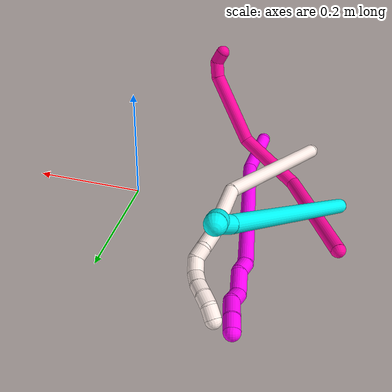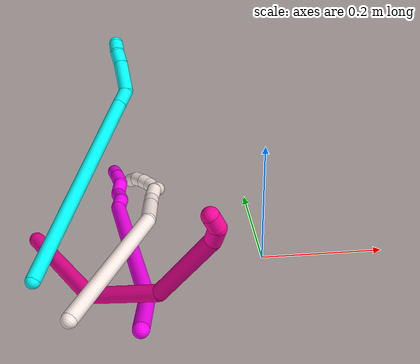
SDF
<sdf version="1.7">
 <world name="default">
  <model name="3">
   <static>0</static>
   <link name="3">
    <collision name="collision-cylinder-e_1_1_4">
     <pose>0.02684 0.108191 0.145891 -0.638098 0.146713 -0.048542</pose>
     <geometry><cylinder><radius>0.0125</radius><length>0.367204</length></cylinder></geometry>
     <surface>
      <friction><ode><mu>1.16</mu><mu2>1.16</mu2><slip1>0</slip1><slip2>0</slip2></ode></friction>
      <contact><ode><kp>1e+06</kp><kd>1</kd><max_vel>0</max_vel><min_depth>0.001</min_depth></ode></contact>
     </surface>
    </collision>
    <visual name="visual-cylinder-e_1_1_4">
     <pose>0.02684 0.108191 0.145891 -0.638098 0.146713 -0.048542</pose>
     <geometry><cylinder><radius>0.0125</radius><length>0.367204</length></cylinder></geometry>
     <material><ambient>0.003922 1 0.996078 1</ambient></material>
    </visual>
    <collision name="collision-cylinder-e_2_4_5">
     <pose>0.056899 0.22608 0.302616 -0.730053 0.217832 -0.083527</pose>
     <geometry><cylinder><radius>0.0125</radius><length>0.029787</length></cylinder></geometry>
     <surface>
      <friction><ode><mu>1.16</mu><mu2>1.16</mu2><slip1>0</slip1><slip2>0</slip2></ode></friction>
      <contact><ode><kp>1e+06</kp><kd>1</kd><max_vel>0</max_vel><min_depth>0.001</min_depth></ode></contact>
     </surface>
    </collision>
    <visual name="visual-cylinder-e_2_4_5">
     <pose>0.056899 0.22608 0.302616 -0.730053 0.217832 -0.083527</pose>
     <geometry><cylinder><radius>0.0125</radius><length>0.029787</length></cylinder></geometry>
     <material><ambient>0.003922 1 0.996078 1</ambient></material>
    </visual>
    <collision name="collision-cylinder-e_3_5_6">
     <pose>0.075059 0.24046 0.33735 -0.19348 0.550301 -0.054779</pose>
     <geometry><cylinder><radius>0.0125</radius><length>0.057141</length></cylinder></geometry>
     <surface>
      <friction><ode><mu>1.16</mu><mu2>1.16</mu2><slip1>0</slip1><slip2>0</slip2></ode></friction>
      <contact><ode><kp>1e+06</kp><kd>1</kd><max_vel>0</max_vel><min_depth>0.001</min_depth></ode></contact>
     </surface>
    </collision>
    <visual name="visual-cylinder-e_3_5_6">
     <pose>0.075059 0.24046 0.33735 -0.19348 0.550301 -0.054779</pose>
     <geometry><cylinder><radius>0.0125</radius><length>0.057141</length></cylinder></geometry>
     <material><ambient>0.003922 1 0.996078 1</ambient></material>
    </visual>
    <collision name="collision-cylinder-e_4_6_7">
     <pose>0.096971 0.246052 0.371356 -0.089711 0.601884 -0.02786</pose>
     <geometry><cylinder><radius>0.0125</radius><length>0.024625</length></cylinder></geometry>
     <surface>
      <friction><ode><mu>1.16</mu><mu2>1.16</mu2><slip1>0</slip1><slip2>0</slip2></ode></friction>
      <contact><ode><kp>1e+06</kp><kd>1</kd><max_vel>0</max_vel><min_depth>0.001</min_depth></ode></contact>
     </surface>
    </collision>
    <visual name="visual-cylinder-e_4_6_7">
     <pose>0.096971 0.246052 0.371356 -0.089711 0.601884 -0.02786</pose>
     <geometry><cylinder><radius>0.0125</radius><length>0.024625</length></cylinder></geometry>
     <material><ambient>0.003922 1 0.996078 1</ambient></material>
    </visual>
    <collision name="collision-cylinder-e_5_7_2">
     <pose>0.107027 0.248815 0.391457 -0.183431 0.294706 -0.027301</pose>
     <geometry><cylinder><radius>0.0125</radius><length>0.021243</length></cylinder></geometry>
     <surface>
      <friction><ode><mu>1.16</mu><mu2>1.16</mu2><slip1>0</slip1><slip2>0</slip2></ode></friction>
      <contact><ode><kp>1e+06</kp><kd>1</kd><max_vel>0</max_vel><min_depth>0.001</min_depth></ode></contact>
     </surface>
    </collision>
    <visual name="visual-cylinder-e_5_7_2">
     <pose>0.107027 0.248815 0.391457 -0.183431 0.294706 -0.027301</pose>
     <geometry><cylinder><radius>0.0125</radius><length>0.021243</length></cylinder></geometry>
     <material><ambient>0.003922 1 0.996078 1</ambient></material>
    </visual>
    <collision name="collision-sphere-2">
     <pose>0.110112 0.250669 0.40145 0 -0 0</pose>
     <geometry><sphere><radius>0.0125</radius></sphere></geometry>
     <surface>
      <friction><ode><mu>1.16</mu><mu2>1.16</mu2><slip1>0</slip1><slip2>0</slip2></ode></friction>
      <contact><ode><kp>1e+06</kp><kd>1</kd><max_vel>0</max_vel><min_depth>0.001</min_depth></ode></contact>
     </surface>
    </collision>
    <visual name="visual-sphere-2">
     <pose>0.110112 0.250669 0.40145 0 -0 0</pose>
     <geometry><sphere><radius>0.0125</radius></sphere></geometry>
     <material><ambient>0.003922 1 0.996078 1</ambient></material>
    </visual>
    <collision name="collision-sphere-7">
     <pose>0.103942 0.246961 0.381464 0 -0 0</pose>
     <geometry><sphere><radius>0.0125</radius></sphere></geometry>
     <surface>
      <friction><ode><mu>1.16</mu><mu2>1.16</mu2><slip1>0</slip1><slip2>0</slip2></ode></friction>
      <contact><ode><kp>1e+06</kp><kd>1</kd><max_vel>0</max_vel><min_depth>0.001</min_depth></ode></contact>
     </surface>
    </collision>
    <visual name="visual-sphere-7">
     <pose>0.103942 0.246961 0.381464 0 -0 0</pose>
     <geometry><sphere><radius>0.0125</radius></sphere></geometry>
     <material><ambient>0.003922 1 0.996078 1</ambient></material>
    </visual>
    <collision name="collision-sphere-6">
     <pose>0.089999 0.245143 0.361248 0 -0 0</pose>
     <geometry><sphere><radius>0.0125</radius></sphere></geometry>
     <surface>
      <friction><ode><mu>1.16</mu><mu2>1.16</mu2><slip1>0</slip1><slip2>0</slip2></ode></friction>
      <contact><ode><kp>1e+06</kp><kd>1</kd><max_vel>0</max_vel><min_depth>0.001</min_depth></ode></contact>
     </surface>
    </collision>
    <visual name="visual-sphere-6">
     <pose>0.089999 0.245143 0.361248 0 -0 0</pose>
     <geometry><sphere><radius>0.0125</radius></sphere></geometry>
     <material><ambient>0.003922 1 0.996078 1</ambient></material>
    </visual>
    <collision name="collision-sphere-5">
     <pose>0.060118 0.235778 0.313452 0 -0 0</pose>
     <geometry><sphere><radius>0.0125</radius></sphere></geometry>
     <surface>
      <friction><ode><mu>1.16</mu><mu2>1.16</mu2><slip1>0</slip1><slip2>0</slip2></ode></friction>
      <contact><ode><kp>1e+06</kp><kd>1</kd><max_vel>0</max_vel><min_depth>0.001</min_depth></ode></contact>
     </surface>
    </collision>
    <visual name="visual-sphere-5">
     <pose>0.060118 0.235778 0.313452 0 -0 0</pose>
     <geometry><sphere><radius>0.0125</radius></sphere></geometry>
     <material><ambient>0.003922 1 0.996078 1</ambient></material>
    </visual>
    <collision name="collision-sphere-1">
     <geometry><sphere><radius>0.0125</radius></sphere></geometry>
     <surface>
      <friction><ode><mu>1.16</mu><mu2>1.16</mu2><slip1>0</slip1><slip2>0</slip2></ode></friction>
      <contact><ode><kp>1e+06</kp><kd>1</kd><max_vel>0</max_vel><min_depth>0.001</min_depth></ode></contact>
     </surface>
    </collision>
    <visual name="visual-sphere-1">
     <geometry><sphere><radius>0.0125</radius></sphere></geometry>
     <material><ambient>0.003922 1 0.996078 1</ambient></material>
    </visual>
    <collision name="collision-sphere-4">
     <pose>0.053681 0.216382 0.291781 0 -0 0</pose>
     <geometry><sphere><radius>0.0125</radius></sphere></geometry>
     <surface>
      <friction><ode><mu>1.16</mu><mu2>1.16</mu2><slip1>0</slip1><slip2>0</slip2></ode></friction>
      <contact><ode><kp>1e+06</kp><kd>1</kd><max_vel>0</max_vel><min_depth>0.001</min_depth></ode></contact>
     </surface>
    </collision>
    <visual name="visual-sphere-4">
     <pose>0.053681 0.216382 0.291781 0 -0 0</pose>
     <geometry><sphere><radius>0.0125</radius></sphere></geometry>
     <material><ambient>0.003922 1 0.996078 1</ambient></material>
    </visual>
    <inertial>
     <pose>0.041002 0.143094 0.198645 0 -0 0</pose>
     <mass>0.5</mass>
     <inertia>
      <ixx>0.003922</ixx>
      <ixy>0</ixy>
      <ixz>0</ixz>
      <iyy>0.003183</iyy>
      <iyz>0</iyz>
      <izz>-0.003031</izz>
     </inertia>
    </inertial>
   </link>
   <pose>-0.363133 -0.044152 0.012192 1.09544 -1.21172 -2.5264</pose>
  </model>
  <model name="10">
   <static>0</static>
   <link name="10">
    <collision name="collision-cylinder-e_1_1_4">
     <pose>0.007856 0.044188 0.008393 -1.38309 0.172914 -0.143274</pose>
     <geometry><cylinder><radius>0.0125</radius><length>0.091318</length></cylinder></geometry>
     <surface>
      <friction><ode><mu>1.16</mu><mu2>1.16</mu2><slip1>0</slip1><slip2>0</slip2></ode></friction>
      <contact><ode><kp>1e+06</kp><kd>1</kd><max_vel>0</max_vel><min_depth>0.001</min_depth></ode></contact>
     </surface>
    </collision>
    <visual name="visual-cylinder-e_1_1_4">
     <pose>0.007856 0.044188 0.008393 -1.38309 0.172914 -0.143274</pose>
     <geometry><cylinder><radius>0.0125</radius><length>0.091318</length></cylinder></geometry>
     <material><ambient>1 0 0.964706 1</ambient></material>
    </visual>
    <collision name="collision-cylinder-e_2_4_5">
     <pose>0.019157 0.221204 0.001041 -1.68878 0.025754 -0.028987</pose>
     <geometry><cylinder><radius>0.0125</radius><length>0.267605</length></cylinder></geometry>
     <surface>
      <friction><ode><mu>1.16</mu><mu2>1.16</mu2><slip1>0</slip1><slip2>0</slip2></ode></friction>
      <contact><ode><kp>1e+06</kp><kd>1</kd><max_vel>0</max_vel><min_depth>0.001</min_depth></ode></contact>
     </surface>
    </collision>
    <visual name="visual-cylinder-e_2_4_5">
     <pose>0.019157 0.221204 0.001041 -1.68878 0.025754 -0.028987</pose>
     <geometry><cylinder><radius>0.0125</radius><length>0.267605</length></cylinder></geometry>
     <material><ambient>1 0 0.964706 1</ambient></material>
    </visual>
    <collision name="collision-cylinder-e_3_5_6">
     <pose>0.021186 0.365257 -0.011833 -1.32039 -0.121671 0.094514</pose>
     <geometry><cylinder><radius>0.0125</radius><length>0.023345</length></cylinder></geometry>
     <surface>
      <friction><ode><mu>1.16</mu><mu2>1.16</mu2><slip1>0</slip1><slip2>0</slip2></ode></friction>
      <contact><ode><kp>1e+06</kp><kd>1</kd><max_vel>0</max_vel><min_depth>0.001</min_depth></ode></contact>
     </surface>
    </collision>
    <visual name="visual-cylinder-e_3_5_6">
     <pose>0.021186 0.365257 -0.011833 -1.32039 -0.121671 0.094514</pose>
     <geometry><cylinder><radius>0.0125</radius><length>0.023345</length></cylinder></geometry>
     <material><ambient>1 0 0.964706 1</ambient></material>
    </visual>
    <collision name="collision-cylinder-e_4_6_7">
     <pose>0.024595 0.395117 -0.010568 -1.65678 0.252516 -0.274944</pose>
     <geometry><cylinder><radius>0.0125</radius><length>0.038632</length></cylinder></geometry>
     <surface>
      <friction><ode><mu>1.16</mu><mu2>1.16</mu2><slip1>0</slip1><slip2>0</slip2></ode></friction>
      <contact><ode><kp>1e+06</kp><kd>1</kd><max_vel>0</max_vel><min_depth>0.001</min_depth></ode></contact>
     </surface>
    </collision>
    <visual name="visual-cylinder-e_4_6_7">
     <pose>0.024595 0.395117 -0.010568 -1.65678 0.252516 -0.274944</pose>
     <geometry><cylinder><radius>0.0125</radius><length>0.038632</length></cylinder></geometry>
     <material><ambient>1 0 0.964706 1</ambient></material>
    </visual>
    <collision name="collision-cylinder-e_5_7_8">
     <pose>0.024644 0.425584 -0.009956 -1.38551 -0.377726 0.314664</pose>
     <geometry><cylinder><radius>0.0125</radius><length>0.025904</length></cylinder></geometry>
     <surface>
      <friction><ode><mu>1.16</mu><mu2>1.16</mu2><slip1>0</slip1><slip2>0</slip2></ode></friction>
      <contact><ode><kp>1e+06</kp><kd>1</kd><max_vel>0</max_vel><min_depth>0.001</min_depth></ode></contact>
     </surface>
    </collision>
    <visual name="visual-cylinder-e_5_7_8">
     <pose>0.024644 0.425584 -0.009956 -1.38551 -0.377726 0.314664</pose>
     <geometry><cylinder><radius>0.0125</radius><length>0.025904</length></cylinder></geometry>
     <material><ambient>1 0 0.964706 1</ambient></material>
    </visual>
    <collision name="collision-cylinder-e_6_8_9">
     <pose>0.019999 0.451882 -0.010352 -1.74951 0.008924 -0.010681</pose>
     <geometry><cylinder><radius>0.0125</radius><length>0.0294</length></cylinder></geometry>
     <surface>
      <friction><ode><mu>1.16</mu><mu2>1.16</mu2><slip1>0</slip1><slip2>0</slip2></ode></friction>
      <contact><ode><kp>1e+06</kp><kd>1</kd><max_vel>0</max_vel><min_depth>0.001</min_depth></ode></contact>
     </surface>
    </collision>
    <visual name="visual-cylinder-e_6_8_9">
     <pose>0.019999 0.451882 -0.010352 -1.74951 0.008924 -0.010681</pose>
     <geometry><cylinder><radius>0.0125</radius><length>0.0294</length></cylinder></geometry>
     <material><ambient>1 0 0.964706 1</ambient></material>
    </visual>
    <collision name="collision-cylinder-e_7_9_2">
     <pose>0.021956 0.477938 -0.014933 -1.73905 0.154076 -0.182309</pose>
     <geometry><cylinder><radius>0.0125</radius><length>0.023796</length></cylinder></geometry>
     <surface>
      <friction><ode><mu>1.16</mu><mu2>1.16</mu2><slip1>0</slip1><slip2>0</slip2></ode></friction>
      <contact><ode><kp>1e+06</kp><kd>1</kd><max_vel>0</max_vel><min_depth>0.001</min_depth></ode></contact>
     </surface>
    </collision>
    <visual name="visual-cylinder-e_7_9_2">
     <pose>0.021956 0.477938 -0.014933 -1.73905 0.154076 -0.182309</pose>
     <geometry><cylinder><radius>0.0125</radius><length>0.023796</length></cylinder></geometry>
     <material><ambient>1 0 0.964706 1</ambient></material>
    </visual>
    <collision name="collision-sphere-2">
     <pose>0.023782 0.489529 -0.016902 0 -0 0</pose>
     <geometry><sphere><radius>0.0125</radius></sphere></geometry>
     <surface>
      <friction><ode><mu>1.16</mu><mu2>1.16</mu2><slip1>0</slip1><slip2>0</slip2></ode></friction>
      <contact><ode><kp>1e+06</kp><kd>1</kd><max_vel>0</max_vel><min_depth>0.001</min_depth></ode></contact>
     </surface>
    </collision>
    <visual name="visual-sphere-2">
     <pose>0.023782 0.489529 -0.016902 0 -0 0</pose>
     <geometry><sphere><radius>0.0125</radius></sphere></geometry>
     <material><ambient>1 0 0.964706 1</ambient></material>
    </visual>
    <collision name="collision-sphere-9">
     <pose>0.02013 0.466347 -0.012965 0 -0 0</pose>
     <geometry><sphere><radius>0.0125</radius></sphere></geometry>
     <surface>
      <friction><ode><mu>1.16</mu><mu2>1.16</mu2><slip1>0</slip1><slip2>0</slip2></ode></friction>
      <contact><ode><kp>1e+06</kp><kd>1</kd><max_vel>0</max_vel><min_depth>0.001</min_depth></ode></contact>
     </surface>
    </collision>
    <visual name="visual-sphere-9">
     <pose>0.02013 0.466347 -0.012965 0 -0 0</pose>
     <geometry><sphere><radius>0.0125</radius></sphere></geometry>
     <material><ambient>1 0 0.964706 1</ambient></material>
    </visual>
    <collision name="collision-sphere-4">
     <pose>0.015712 0.088376 0.016786 0 -0 0</pose>
     <geometry><sphere><radius>0.0125</radius></sphere></geometry>
     <surface>
      <friction><ode><mu>1.16</mu><mu2>1.16</mu2><slip1>0</slip1><slip2>0</slip2></ode></friction>
      <contact><ode><kp>1e+06</kp><kd>1</kd><max_vel>0</max_vel><min_depth>0.001</min_depth></ode></contact>
     </surface>
    </collision>
    <visual name="visual-sphere-4">
     <pose>0.015712 0.088376 0.016786 0 -0 0</pose>
     <geometry><sphere><radius>0.0125</radius></sphere></geometry>
     <material><ambient>1 0 0.964706 1</ambient></material>
    </visual>
    <collision name="collision-sphere-1">
     <geometry><sphere><radius>0.0125</radius></sphere></geometry>
     <surface>
      <friction><ode><mu>1.16</mu><mu2>1.16</mu2><slip1>0</slip1><slip2>0</slip2></ode></friction>
      <contact><ode><kp>1e+06</kp><kd>1</kd><max_vel>0</max_vel><min_depth>0.001</min_depth></ode></contact>
     </surface>
    </collision>
    <visual name="visual-sphere-1">
     <geometry><sphere><radius>0.0125</radius></sphere></geometry>
     <material><ambient>1 0 0.964706 1</ambient></material>
    </visual>
    <collision name="collision-sphere-8">
     <pose>0.019867 0.437417 -0.007738 0 -0 0</pose>
     <geometry><sphere><radius>0.0125</radius></sphere></geometry>
     <surface>
      <friction><ode><mu>1.16</mu><mu2>1.16</mu2><slip1>0</slip1><slip2>0</slip2></ode></friction>
      <contact><ode><kp>1e+06</kp><kd>1</kd><max_vel>0</max_vel><min_depth>0.001</min_depth></ode></contact>
     </surface>
    </collision>
    <visual name="visual-sphere-8">
     <pose>0.019867 0.437417 -0.007738 0 -0 0</pose>
     <geometry><sphere><radius>0.0125</radius></sphere></geometry>
     <material><ambient>1 0 0.964706 1</ambient></material>
    </visual>
    <collision name="collision-sphere-5">
     <pose>0.022603 0.354032 -0.014704 0 -0 0</pose>
     <geometry><sphere><radius>0.0125</radius></sphere></geometry>
     <surface>
      <friction><ode><mu>1.16</mu><mu2>1.16</mu2><slip1>0</slip1><slip2>0</slip2></ode></friction>
      <contact><ode><kp>1e+06</kp><kd>1</kd><max_vel>0</max_vel><min_depth>0.001</min_depth></ode></contact>
     </surface>
    </collision>
    <visual name="visual-sphere-5">
     <pose>0.022603 0.354032 -0.014704 0 -0 0</pose>
     <geometry><sphere><radius>0.0125</radius></sphere></geometry>
     <material><ambient>1 0 0.964706 1</ambient></material>
    </visual>
    <collision name="collision-sphere-6">
     <pose>0.019769 0.376482 -0.008962 0 -0 0</pose>
     <geometry><sphere><radius>0.0125</radius></sphere></geometry>
     <surface>
      <friction><ode><mu>1.16</mu><mu2>1.16</mu2><slip1>0</slip1><slip2>0</slip2></ode></friction>
      <contact><ode><kp>1e+06</kp><kd>1</kd><max_vel>0</max_vel><min_depth>0.001</min_depth></ode></contact>
     </surface>
    </collision>
    <visual name="visual-sphere-6">
     <pose>0.019769 0.376482 -0.008962 0 -0 0</pose>
     <geometry><sphere><radius>0.0125</radius></sphere></geometry>
     <material><ambient>1 0 0.964706 1</ambient></material>
    </visual>
    <collision name="collision-sphere-7">
     <pose>0.029421 0.413751 -0.012174 0 -0 0</pose>
     <geometry><sphere><radius>0.0125</radius></sphere></geometry>
     <surface>
      <friction><ode><mu>1.16</mu><mu2>1.16</mu2><slip1>0</slip1><slip2>0</slip2></ode></friction>
      <contact><ode><kp>1e+06</kp><kd>1</kd><max_vel>0</max_vel><min_depth>0.001</min_depth></ode></contact>
     </surface>
    </collision>
    <visual name="visual-sphere-7">
     <pose>0.029421 0.413751 -0.012174 0 -0 0</pose>
     <geometry><sphere><radius>0.0125</radius></sphere></geometry>
     <material><ambient>1 0 0.964706 1</ambient></material>
    </visual>
    <inertial>
     <pose>0.018075 0.245409 -0.001114 0 -0 0</pose>
     <mass>0.5</mass>
     <inertia>
      <ixx>0.001632</ixx>
      <ixy>0</ixy>
      <ixz>0</ixz>
      <iyy>-0.000193</iyy>
      <iyz>0</iyz>
      <izz>-0.001731</izz>
     </inertia>
    </inertial>
   </link>
   <pose>-0.200956 -0.200424 0.030774 2.97909 1.41079 3.01901</pose>
  </model>
  <model name="11">
   <static>0</static>
   <link name="11">
    <collision name="collision-cylinder-e_1_1_4">
     <pose>0.002439 -0.011845 0.11907 0.099151 0.020376 0.001011</pose>
     <geometry><cylinder><radius>0.0125</radius><length>0.239366</length></cylinder></geometry>
     <surface>
      <friction><ode><mu>1.16</mu><mu2>1.16</mu2><slip1>0</slip1><slip2>0</slip2></ode></friction>
      <contact><ode><kp>1e+06</kp><kd>1</kd><max_vel>0</max_vel><min_depth>0.001</min_depth></ode></contact>
     </surface>
    </collision>
    <visual name="visual-cylinder-e_1_1_4">
     <pose>0.002439 -0.011845 0.11907 0.099151 0.020376 0.001011</pose>
     <geometry><cylinder><radius>0.0125</radius><length>0.239366</length></cylinder></geometry>
     <material><ambient>1 0.933333 0.909804 1</ambient></material>
    </visual>
    <collision name="collision-cylinder-e_2_4_5">
     <pose>0.021619 -0.020882 0.268833 -0.091212 0.497605 -0.023189</pose>
     <geometry><cylinder><radius>0.0125</radius><length>0.070148</length></cylinder></geometry>
     <surface>
      <friction><ode><mu>1.16</mu><mu2>1.16</mu2><slip1>0</slip1><slip2>0</slip2></ode></friction>
      <contact><ode><kp>1e+06</kp><kd>1</kd><max_vel>0</max_vel><min_depth>0.001</min_depth></ode></contact>
     </surface>
    </collision>
    <visual name="visual-cylinder-e_2_4_5">
     <pose>0.021619 -0.020882 0.268833 -0.091212 0.497605 -0.023189</pose>
     <geometry><cylinder><radius>0.0125</radius><length>0.070148</length></cylinder></geometry>
     <material><ambient>1 0.933333 0.909804 1</ambient></material>
    </visual>
    <collision name="collision-cylinder-e_3_5_6">
     <pose>0.045338 -0.017083 0.312053 -0.078993 0.50684 -0.020468</pose>
     <geometry><cylinder><radius>0.0125</radius><length>0.028748</length></cylinder></geometry>
     <surface>
      <friction><ode><mu>1.16</mu><mu2>1.16</mu2><slip1>0</slip1><slip2>0</slip2></ode></friction>
      <contact><ode><kp>1e+06</kp><kd>1</kd><max_vel>0</max_vel><min_depth>0.001</min_depth></ode></contact>
     </surface>
    </collision>
    <visual name="visual-cylinder-e_3_5_6">
     <pose>0.045338 -0.017083 0.312053 -0.078993 0.50684 -0.020468</pose>
     <geometry><cylinder><radius>0.0125</radius><length>0.028748</length></cylinder></geometry>
     <material><ambient>1 0.933333 0.909804 1</ambient></material>
    </visual>
    <collision name="collision-cylinder-e_4_6_7">
     <pose>0.057706 -0.014404 0.341095 -0.101822 0.314025 -0.016134</pose>
     <geometry><cylinder><radius>0.0125</radius><length>0.034907</length></cylinder></geometry>
     <surface>
      <friction><ode><mu>1.16</mu><mu2>1.16</mu2><slip1>0</slip1><slip2>0</slip2></ode></friction>
      <contact><ode><kp>1e+06</kp><kd>1</kd><max_vel>0</max_vel><min_depth>0.001</min_depth></ode></contact>
     </surface>
    </collision>
    <visual name="visual-cylinder-e_4_6_7">
     <pose>0.057706 -0.014404 0.341095 -0.101822 0.314025 -0.016134</pose>
     <geometry><cylinder><radius>0.0125</radius><length>0.034907</length></cylinder></geometry>
     <material><ambient>1 0.933333 0.909804 1</ambient></material>
    </visual>
    <collision name="collision-cylinder-e_5_7_8">
     <pose>0.068373 -0.015749 0.366218 0.338627 0.524109 0.091641</pose>
     <geometry><cylinder><radius>0.0125</radius><length>0.021085</length></cylinder></geometry>
     <surface>
      <friction><ode><mu>1.16</mu><mu2>1.16</mu2><slip1>0</slip1><slip2>0</slip2></ode></friction>
      <contact><ode><kp>1e+06</kp><kd>1</kd><max_vel>0</max_vel><min_depth>0.001</min_depth></ode></contact>
     </surface>
    </collision>
    <visual name="visual-cylinder-e_5_7_8">
     <pose>0.068373 -0.015749 0.366218 0.338627 0.524109 0.091641</pose>
     <geometry><cylinder><radius>0.0125</radius><length>0.021085</length></cylinder></geometry>
     <material><ambient>1 0.933333 0.909804 1</ambient></material>
    </visual>
    <collision name="collision-cylinder-e_6_8_9">
     <pose>0.083167 -0.017672 0.381686 -0.160284 0.940204 -0.081569</pose>
     <geometry><cylinder><radius>0.0125</radius><length>0.023568</length></cylinder></geometry>
     <surface>
      <friction><ode><mu>1.16</mu><mu2>1.16</mu2><slip1>0</slip1><slip2>0</slip2></ode></friction>
      <contact><ode><kp>1e+06</kp><kd>1</kd><max_vel>0</max_vel><min_depth>0.001</min_depth></ode></contact>
     </surface>
    </collision>
    <visual name="visual-cylinder-e_6_8_9">
     <pose>0.083167 -0.017672 0.381686 -0.160284 0.940204 -0.081569</pose>
     <geometry><cylinder><radius>0.0125</radius><length>0.023568</length></cylinder></geometry>
     <material><ambient>1 0.933333 0.909804 1</ambient></material>
    </visual>
    <collision name="collision-cylinder-e_7_9_10">
     <pose>0.098648 -0.010615 0.395449 -0.711155 0.579467 -0.220525</pose>
     <geometry><cylinder><radius>0.0125</radius><length>0.02178</length></cylinder></geometry>
     <surface>
      <friction><ode><mu>1.16</mu><mu2>1.16</mu2><slip1>0</slip1><slip2>0</slip2></ode></friction>
      <contact><ode><kp>1e+06</kp><kd>1</kd><max_vel>0</max_vel><min_depth>0.001</min_depth></ode></contact>
     </surface>
    </collision>
    <visual name="visual-cylinder-e_7_9_10">
     <pose>0.098648 -0.010615 0.395449 -0.711155 0.579467 -0.220525</pose>
     <geometry><cylinder><radius>0.0125</radius><length>0.02178</length></cylinder></geometry>
     <material><ambient>1 0.933333 0.909804 1</ambient></material>
    </visual>
    <collision name="collision-cylinder-e_8_10_11">
     <pose>0.11064 0.001846 0.406969 -0.954196 0.646813 -0.343116</pose>
     <geometry><cylinder><radius>0.0125</radius><length>0.020008</length></cylinder></geometry>
     <surface>
      <friction><ode><mu>1.16</mu><mu2>1.16</mu2><slip1>0</slip1><slip2>0</slip2></ode></friction>
      <contact><ode><kp>1e+06</kp><kd>1</kd><max_vel>0</max_vel><min_depth>0.001</min_depth></ode></contact>
     </surface>
    </collision>
    <visual name="visual-cylinder-e_8_10_11">
     <pose>0.11064 0.001846 0.406969 -0.954196 0.646813 -0.343116</pose>
     <geometry><cylinder><radius>0.0125</radius><length>0.020008</length></cylinder></geometry>
     <material><ambient>1 0.933333 0.909804 1</ambient></material>
    </visual>
    <collision name="collision-cylinder-e_9_11_12">
     <pose>0.123994 0.014039 0.415645 -0.950316 0.809429 -0.433826</pose>
     <geometry><cylinder><radius>0.0125</radius><length>0.020237</length></cylinder></geometry>
     <surface>
      <friction><ode><mu>1.16</mu><mu2>1.16</mu2><slip1>0</slip1><slip2>0</slip2></ode></friction>
      <contact><ode><kp>1e+06</kp><kd>1</kd><max_vel>0</max_vel><min_depth>0.001</min_depth></ode></contact>
     </surface>
    </collision>
    <visual name="visual-cylinder-e_9_11_12">
     <pose>0.123994 0.014039 0.415645 -0.950316 0.809429 -0.433826</pose>
     <geometry><cylinder><radius>0.0125</radius><length>0.020237</length></cylinder></geometry>
     <material><ambient>1 0.933333 0.909804 1</ambient></material>
    </visual>
    <collision name="collision-cylinder-e_10_12_2">
     <pose>0.140588 0.022365 0.422634 -0.734601 1.16806 -0.498053</pose>
     <geometry><cylinder><radius>0.0125</radius><length>0.020152</length></cylinder></geometry>
     <surface>
      <friction><ode><mu>1.16</mu><mu2>1.16</mu2><slip1>0</slip1><slip2>0</slip2></ode></friction>
      <contact><ode><kp>1e+06</kp><kd>1</kd><max_vel>0</max_vel><min_depth>0.001</min_depth></ode></contact>
     </surface>
    </collision>
    <visual name="visual-cylinder-e_10_12_2">
     <pose>0.140588 0.022365 0.422634 -0.734601 1.16806 -0.498053</pose>
     <geometry><cylinder><radius>0.0125</radius><length>0.020152</length></cylinder></geometry>
     <material><ambient>1 0.933333 0.909804 1</ambient></material>
    </visual>
    <collision name="collision-sphere-2">
     <pose>0.149859 0.025012 0.425565 0 -0 0</pose>
     <geometry><sphere><radius>0.0125</radius></sphere></geometry>
     <surface>
      <friction><ode><mu>1.16</mu><mu2>1.16</mu2><slip1>0</slip1><slip2>0</slip2></ode></friction>
      <contact><ode><kp>1e+06</kp><kd>1</kd><max_vel>0</max_vel><min_depth>0.001</min_depth></ode></contact>
     </surface>
    </collision>
    <visual name="visual-sphere-2">
     <pose>0.149859 0.025012 0.425565 0 -0 0</pose>
     <geometry><sphere><radius>0.0125</radius></sphere></geometry>
     <material><ambient>1 0.933333 0.909804 1</ambient></material>
    </visual>
    <collision name="collision-sphere-12">
     <pose>0.131318 0.019718 0.419703 0 -0 0</pose>
     <geometry><sphere><radius>0.0125</radius></sphere></geometry>
     <surface>
      <friction><ode><mu>1.16</mu><mu2>1.16</mu2><slip1>0</slip1><slip2>0</slip2></ode></friction>
      <contact><ode><kp>1e+06</kp><kd>1</kd><max_vel>0</max_vel><min_depth>0.001</min_depth></ode></contact>
     </surface>
    </collision>
    <visual name="visual-sphere-12">
     <pose>0.131318 0.019718 0.419703 0 -0 0</pose>
     <geometry><sphere><radius>0.0125</radius></sphere></geometry>
     <material><ambient>1 0.933333 0.909804 1</ambient></material>
    </visual>
    <collision name="collision-sphere-11">
     <pose>0.116669 0.008359 0.411586 0 -0 0</pose>
     <geometry><sphere><radius>0.0125</radius></sphere></geometry>
     <surface>
      <friction><ode><mu>1.16</mu><mu2>1.16</mu2><slip1>0</slip1><slip2>0</slip2></ode></friction>
      <contact><ode><kp>1e+06</kp><kd>1</kd><max_vel>0</max_vel><min_depth>0.001</min_depth></ode></contact>
     </surface>
    </collision>
    <visual name="visual-sphere-11">
     <pose>0.116669 0.008359 0.411586 0 -0 0</pose>
     <geometry><sphere><radius>0.0125</radius></sphere></geometry>
     <material><ambient>1 0.933333 0.909804 1</ambient></material>
    </visual>
    <collision name="collision-sphere-10">
     <pose>0.104611 -0.004667 0.402353 0 -0 0</pose>
     <geometry><sphere><radius>0.0125</radius></sphere></geometry>
     <surface>
      <friction><ode><mu>1.16</mu><mu2>1.16</mu2><slip1>0</slip1><slip2>0</slip2></ode></friction>
      <contact><ode><kp>1e+06</kp><kd>1</kd><max_vel>0</max_vel><min_depth>0.001</min_depth></ode></contact>
     </surface>
    </collision>
    <visual name="visual-sphere-10">
     <pose>0.104611 -0.004667 0.402353 0 -0 0</pose>
     <geometry><sphere><radius>0.0125</radius></sphere></geometry>
     <material><ambient>1 0.933333 0.909804 1</ambient></material>
    </visual>
    <collision name="collision-sphere-9">
     <pose>0.092685 -0.016563 0.388545 0 -0 0</pose>
     <geometry><sphere><radius>0.0125</radius></sphere></geometry>
     <surface>
      <friction><ode><mu>1.16</mu><mu2>1.16</mu2><slip1>0</slip1><slip2>0</slip2></ode></friction>
      <contact><ode><kp>1e+06</kp><kd>1</kd><max_vel>0</max_vel><min_depth>0.001</min_depth></ode></contact>
     </surface>
    </collision>
    <visual name="visual-sphere-9">
     <pose>0.092685 -0.016563 0.388545 0 -0 0</pose>
     <geometry><sphere><radius>0.0125</radius></sphere></geometry>
     <material><ambient>1 0.933333 0.909804 1</ambient></material>
    </visual>
    <collision name="collision-sphere-4">
     <pose>0.004877 -0.02369 0.238141 0 -0 0</pose>
     <geometry><sphere><radius>0.0125</radius></sphere></geometry>
     <surface>
      <friction><ode><mu>1.16</mu><mu2>1.16</mu2><slip1>0</slip1><slip2>0</slip2></ode></friction>
      <contact><ode><kp>1e+06</kp><kd>1</kd><max_vel>0</max_vel><min_depth>0.001</min_depth></ode></contact>
     </surface>
    </collision>
    <visual name="visual-sphere-4">
     <pose>0.004877 -0.02369 0.238141 0 -0 0</pose>
     <geometry><sphere><radius>0.0125</radius></sphere></geometry>
     <material><ambient>1 0.933333 0.909804 1</ambient></material>
    </visual>
    <collision name="collision-sphere-1">
     <geometry><sphere><radius>0.0125</radius></sphere></geometry>
     <surface>
      <friction><ode><mu>1.16</mu><mu2>1.16</mu2><slip1>0</slip1><slip2>0</slip2></ode></friction>
      <contact><ode><kp>1e+06</kp><kd>1</kd><max_vel>0</max_vel><min_depth>0.001</min_depth></ode></contact>
     </surface>
    </collision>
    <visual name="visual-sphere-1">
     <geometry><sphere><radius>0.0125</radius></sphere></geometry>
     <material><ambient>1 0.933333 0.909804 1</ambient></material>
    </visual>
    <collision name="collision-sphere-8">
     <pose>0.073649 -0.018781 0.374827 0 -0 0</pose>
     <geometry><sphere><radius>0.0125</radius></sphere></geometry>
     <surface>
      <friction><ode><mu>1.16</mu><mu2>1.16</mu2><slip1>0</slip1><slip2>0</slip2></ode></friction>
      <contact><ode><kp>1e+06</kp><kd>1</kd><max_vel>0</max_vel><min_depth>0.001</min_depth></ode></contact>
     </surface>
    </collision>
    <visual name="visual-sphere-8">
     <pose>0.073649 -0.018781 0.374827 0 -0 0</pose>
     <geometry><sphere><radius>0.0125</radius></sphere></geometry>
     <material><ambient>1 0.933333 0.909804 1</ambient></material>
    </visual>
    <collision name="collision-sphere-5">
     <pose>0.03836 -0.018075 0.299526 0 -0 0</pose>
     <geometry><sphere><radius>0.0125</radius></sphere></geometry>
     <surface>
      <friction><ode><mu>1.16</mu><mu2>1.16</mu2><slip1>0</slip1><slip2>0</slip2></ode></friction>
      <contact><ode><kp>1e+06</kp><kd>1</kd><max_vel>0</max_vel><min_depth>0.001</min_depth></ode></contact>
     </surface>
    </collision>
    <visual name="visual-sphere-5">
     <pose>0.03836 -0.018075 0.299526 0 -0 0</pose>
     <geometry><sphere><radius>0.0125</radius></sphere></geometry>
     <material><ambient>1 0.933333 0.909804 1</ambient></material>
    </visual>
    <collision name="collision-sphere-6">
     <pose>0.052315 -0.016092 0.324581 0 -0 0</pose>
     <geometry><sphere><radius>0.0125</radius></sphere></geometry>
     <surface>
      <friction><ode><mu>1.16</mu><mu2>1.16</mu2><slip1>0</slip1><slip2>0</slip2></ode></friction>
      <contact><ode><kp>1e+06</kp><kd>1</kd><max_vel>0</max_vel><min_depth>0.001</min_depth></ode></contact>
     </surface>
    </collision>
    <visual name="visual-sphere-6">
     <pose>0.052315 -0.016092 0.324581 0 -0 0</pose>
     <geometry><sphere><radius>0.0125</radius></sphere></geometry>
     <material><ambient>1 0.933333 0.909804 1</ambient></material>
    </visual>
    <collision name="collision-sphere-7">
     <pose>0.063098 -0.012717 0.357609 0 -0 0</pose>
     <geometry><sphere><radius>0.0125</radius></sphere></geometry>
     <surface>
      <friction><ode><mu>1.16</mu><mu2>1.16</mu2><slip1>0</slip1><slip2>0</slip2></ode></friction>
      <contact><ode><kp>1e+06</kp><kd>1</kd><max_vel>0</max_vel><min_depth>0.001</min_depth></ode></contact>
     </surface>
    </collision>
    <visual name="visual-sphere-7">
     <pose>0.063098 -0.012717 0.357609 0 -0 0</pose>
     <geometry><sphere><radius>0.0125</radius></sphere></geometry>
     <material><ambient>1 0.933333 0.909804 1</ambient></material>
    </visual>
    <inertial>
     <pose>0.037049 -0.011004 0.237277 0 -0 0</pose>
     <mass>0.5</mass>
     <inertia>
      <ixx>0.001204</ixx>
      <ixy>0</ixy>
      <ixz>0</ixz>
      <iyy>0.001195</iyy>
      <iyz>0</iyz>
      <izz>9.3e-05</izz>
     </inertia>
    </inertial>
   </link>
   <pose>-0.298287 -0.1747 0.035711 1.25795 0.909207 2.44907</pose>
  </model>
  <model name="18">
   <static>0</static>
   <link name="18">
    <collision name="collision-cylinder-e_1_1_4">
     <pose>-0.01018 -0.004714 0.093387 0.050435 -0.108442 -0.002738</pose>
     <geometry><cylinder><radius>0.0125</radius><length>0.188116</length></cylinder></geometry>
     <surface>
      <friction><ode><mu>1.16</mu><mu2>1.16</mu2><slip1>0</slip1><slip2>0</slip2></ode></friction>
      <contact><ode><kp>1e+06</kp><kd>1</kd><max_vel>0</max_vel><min_depth>0.001</min_depth></ode></contact>
     </surface>
    </collision>
    <visual name="visual-cylinder-e_1_1_4">
     <pose>-0.01018 -0.004714 0.093387 0.050435 -0.108442 -0.002738</pose>
     <geometry><cylinder><radius>0.0125</radius><length>0.188116</length></cylinder></geometry>
     <material><ambient>1 0.007843 0.615686 1</ambient></material>
    </visual>
    <collision name="collision-cylinder-e_2_4_5">
     <pose>-0.005875 -0.042047 0.23851 0.562538 0.232541 0.067467</pose>
     <geometry><cylinder><radius>0.0125</radius><length>0.125706</length></cylinder></geometry>
     <surface>
      <friction><ode><mu>1.16</mu><mu2>1.16</mu2><slip1>0</slip1><slip2>0</slip2></ode></friction>
      <contact><ode><kp>1e+06</kp><kd>1</kd><max_vel>0</max_vel><min_depth>0.001</min_depth></ode></contact>
     </surface>
    </collision>
    <visual name="visual-cylinder-e_2_4_5">
     <pose>-0.005875 -0.042047 0.23851 0.562538 0.232541 0.067467</pose>
     <geometry><cylinder><radius>0.0125</radius><length>0.125706</length></cylinder></geometry>
     <material><ambient>1 0.007843 0.615686 1</ambient></material>
    </visual>
    <collision name="collision-cylinder-e_3_5_6">
     <pose>0.058118 -0.09836 0.330011 0.53736 0.819004 0.237887</pose>
     <geometry><cylinder><radius>0.0125</radius><length>0.135555</length></cylinder></geometry>
     <surface>
      <friction><ode><mu>1.16</mu><mu2>1.16</mu2><slip1>0</slip1><slip2>0</slip2></ode></friction>
      <contact><ode><kp>1e+06</kp><kd>1</kd><max_vel>0</max_vel><min_depth>0.001</min_depth></ode></contact>
     </surface>
    </collision>
    <visual name="visual-cylinder-e_3_5_6">
     <pose>0.058118 -0.09836 0.330011 0.53736 0.819004 0.237887</pose>
     <geometry><cylinder><radius>0.0125</radius><length>0.135555</length></cylinder></geometry>
     <material><ambient>1 0.007843 0.615686 1</ambient></material>
    </visual>
    <collision name="collision-cylinder-e_4_6_7">
     <pose>0.119691 -0.122352 0.37685 0.042073 1.04008 0.024094</pose>
     <geometry><cylinder><radius>0.0125</radius><length>0.027976</length></cylinder></geometry>
     <surface>
      <friction><ode><mu>1.16</mu><mu2>1.16</mu2><slip1>0</slip1><slip2>0</slip2></ode></friction>
      <contact><ode><kp>1e+06</kp><kd>1</kd><max_vel>0</max_vel><min_depth>0.001</min_depth></ode></contact>
     </surface>
    </collision>
    <visual name="visual-cylinder-e_4_6_7">
     <pose>0.119691 -0.122352 0.37685 0.042073 1.04008 0.024094</pose>
     <geometry><cylinder><radius>0.0125</radius><length>0.027976</length></cylinder></geometry>
     <material><ambient>1 0.007843 0.615686 1</ambient></material>
    </visual>
    <collision name="collision-cylinder-e_5_7_2">
     <pose>0.141955 -0.117733 0.384016 -1.55206 1.1216 -1.10479</pose>
     <geometry><cylinder><radius>0.0125</radius><length>0.022647</length></cylinder></geometry>
     <surface>
      <friction><ode><mu>1.16</mu><mu2>1.16</mu2><slip1>0</slip1><slip2>0</slip2></ode></friction>
      <contact><ode><kp>1e+06</kp><kd>1</kd><max_vel>0</max_vel><min_depth>0.001</min_depth></ode></contact>
     </surface>
    </collision>
    <visual name="visual-cylinder-e_5_7_2">
     <pose>0.141955 -0.117733 0.384016 -1.55206 1.1216 -1.10479</pose>
     <geometry><cylinder><radius>0.0125</radius><length>0.022647</length></cylinder></geometry>
     <material><ambient>1 0.007843 0.615686 1</ambient></material>
    </visual>
    <collision name="collision-sphere-2">
     <pose>0.152156 -0.112817 0.384108 0 -0 0</pose>
     <geometry><sphere><radius>0.0125</radius></sphere></geometry>
     <surface>
      <friction><ode><mu>1.16</mu><mu2>1.16</mu2><slip1>0</slip1><slip2>0</slip2></ode></friction>
      <contact><ode><kp>1e+06</kp><kd>1</kd><max_vel>0</max_vel><min_depth>0.001</min_depth></ode></contact>
     </surface>
    </collision>
    <visual name="visual-sphere-2">
     <pose>0.152156 -0.112817 0.384108 0 -0 0</pose>
     <geometry><sphere><radius>0.0125</radius></sphere></geometry>
     <material><ambient>1 0.007843 0.615686 1</ambient></material>
    </visual>
    <collision name="collision-sphere-7">
     <pose>0.131755 -0.12265 0.383924 0 -0 0</pose>
     <geometry><sphere><radius>0.0125</radius></sphere></geometry>
     <surface>
      <friction><ode><mu>1.16</mu><mu2>1.16</mu2><slip1>0</slip1><slip2>0</slip2></ode></friction>
      <contact><ode><kp>1e+06</kp><kd>1</kd><max_vel>0</max_vel><min_depth>0.001</min_depth></ode></contact>
     </surface>
    </collision>
    <visual name="visual-sphere-7">
     <pose>0.131755 -0.12265 0.383924 0 -0 0</pose>
     <geometry><sphere><radius>0.0125</radius></sphere></geometry>
     <material><ambient>1 0.007843 0.615686 1</ambient></material>
    </visual>
    <collision name="collision-sphere-6">
     <pose>0.107627 -0.122054 0.369776 0 -0 0</pose>
     <geometry><sphere><radius>0.0125</radius></sphere></geometry>
     <surface>
      <friction><ode><mu>1.16</mu><mu2>1.16</mu2><slip1>0</slip1><slip2>0</slip2></ode></friction>
      <contact><ode><kp>1e+06</kp><kd>1</kd><max_vel>0</max_vel><min_depth>0.001</min_depth></ode></contact>
     </surface>
    </collision>
    <visual name="visual-sphere-6">
     <pose>0.107627 -0.122054 0.369776 0 -0 0</pose>
     <geometry><sphere><radius>0.0125</radius></sphere></geometry>
     <material><ambient>1 0.007843 0.615686 1</ambient></material>
    </visual>
    <collision name="collision-sphere-5">
     <pose>0.008609 -0.074667 0.290246 0 -0 0</pose>
     <geometry><sphere><radius>0.0125</radius></sphere></geometry>
     <surface>
      <friction><ode><mu>1.16</mu><mu2>1.16</mu2><slip1>0</slip1><slip2>0</slip2></ode></friction>
      <contact><ode><kp>1e+06</kp><kd>1</kd><max_vel>0</max_vel><min_depth>0.001</min_depth></ode></contact>
     </surface>
    </collision>
    <visual name="visual-sphere-5">
     <pose>0.008609 -0.074667 0.290246 0 -0 0</pose>
     <geometry><sphere><radius>0.0125</radius></sphere></geometry>
     <material><ambient>1 0.007843 0.615686 1</ambient></material>
    </visual>
    <collision name="collision-sphere-1">
     <geometry><sphere><radius>0.0125</radius></sphere></geometry>
     <surface>
      <friction><ode><mu>1.16</mu><mu2>1.16</mu2><slip1>0</slip1><slip2>0</slip2></ode></friction>
      <contact><ode><kp>1e+06</kp><kd>1</kd><max_vel>0</max_vel><min_depth>0.001</min_depth></ode></contact>
     </surface>
    </collision>
    <visual name="visual-sphere-1">
     <geometry><sphere><radius>0.0125</radius></sphere></geometry>
     <material><ambient>1 0.007843 0.615686 1</ambient></material>
    </visual>
    <collision name="collision-sphere-4">
     <pose>-0.02036 -0.009428 0.186774 0 -0 0</pose>
     <geometry><sphere><radius>0.0125</radius></sphere></geometry>
     <surface>
      <friction><ode><mu>1.16</mu><mu2>1.16</mu2><slip1>0</slip1><slip2>0</slip2></ode></friction>
      <contact><ode><kp>1e+06</kp><kd>1</kd><max_vel>0</max_vel><min_depth>0.001</min_depth></ode></contact>
     </surface>
    </collision>
    <visual name="visual-sphere-4">
     <pose>-0.02036 -0.009428 0.186774 0 -0 0</pose>
     <geometry><sphere><radius>0.0125</radius></sphere></geometry>
     <material><ambient>1 0.007843 0.615686 1</ambient></material>
    </visual>
    <inertial>
     <pose>0.023576 -0.05119 0.223048 0 -0 0</pose>
     <mass>0.5</mass>
     <inertia>
      <ixx>0.000923</ixx>
      <ixy>0</ixy>
      <ixz>0</ixz>
      <iyy>0.000942</iyy>
      <iyz>0</iyz>
      <izz>8.2e-05</izz>
     </inertia>
    </inertial>
   </link>
   <pose>-0.367712 0.073354 0.012371 -0.136367 -1.46136 2.1689</pose>
  </model>
 </world>
</sdf>
